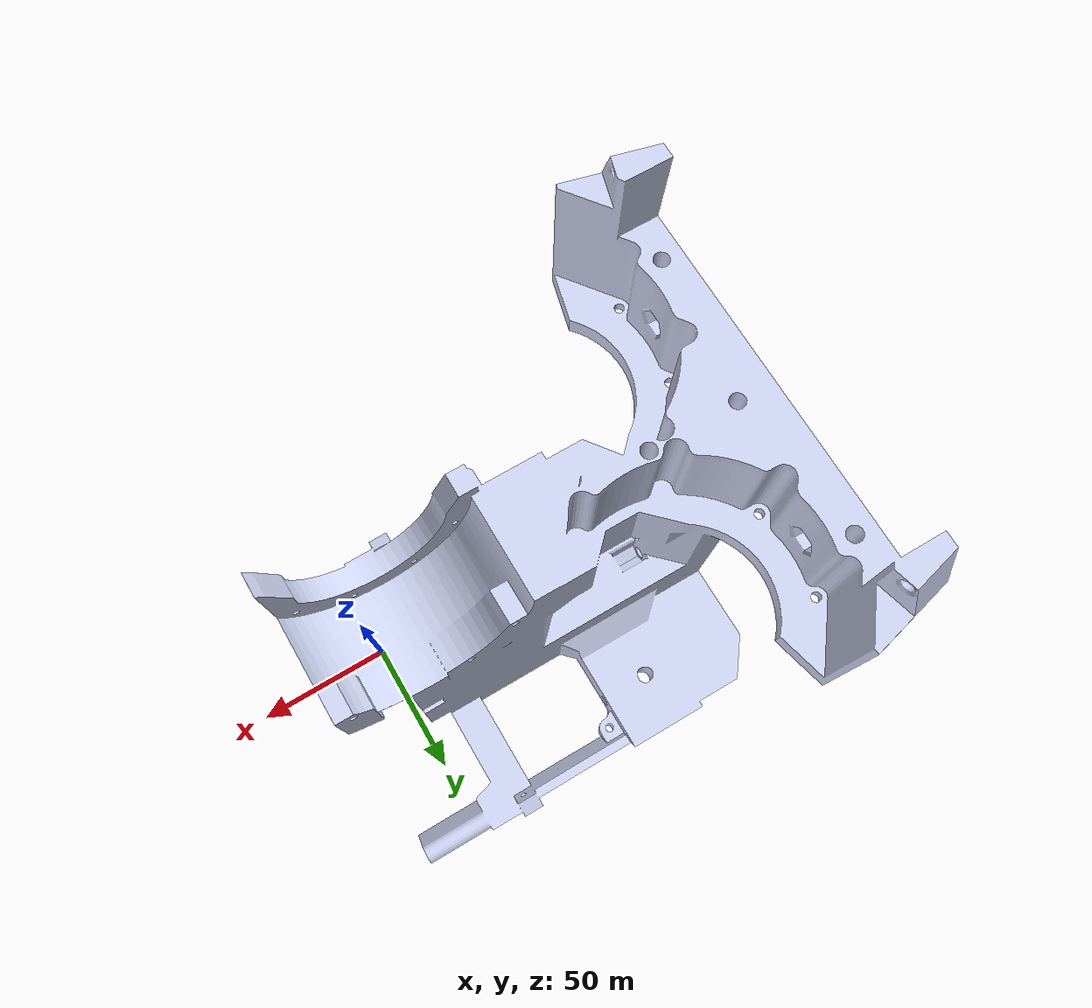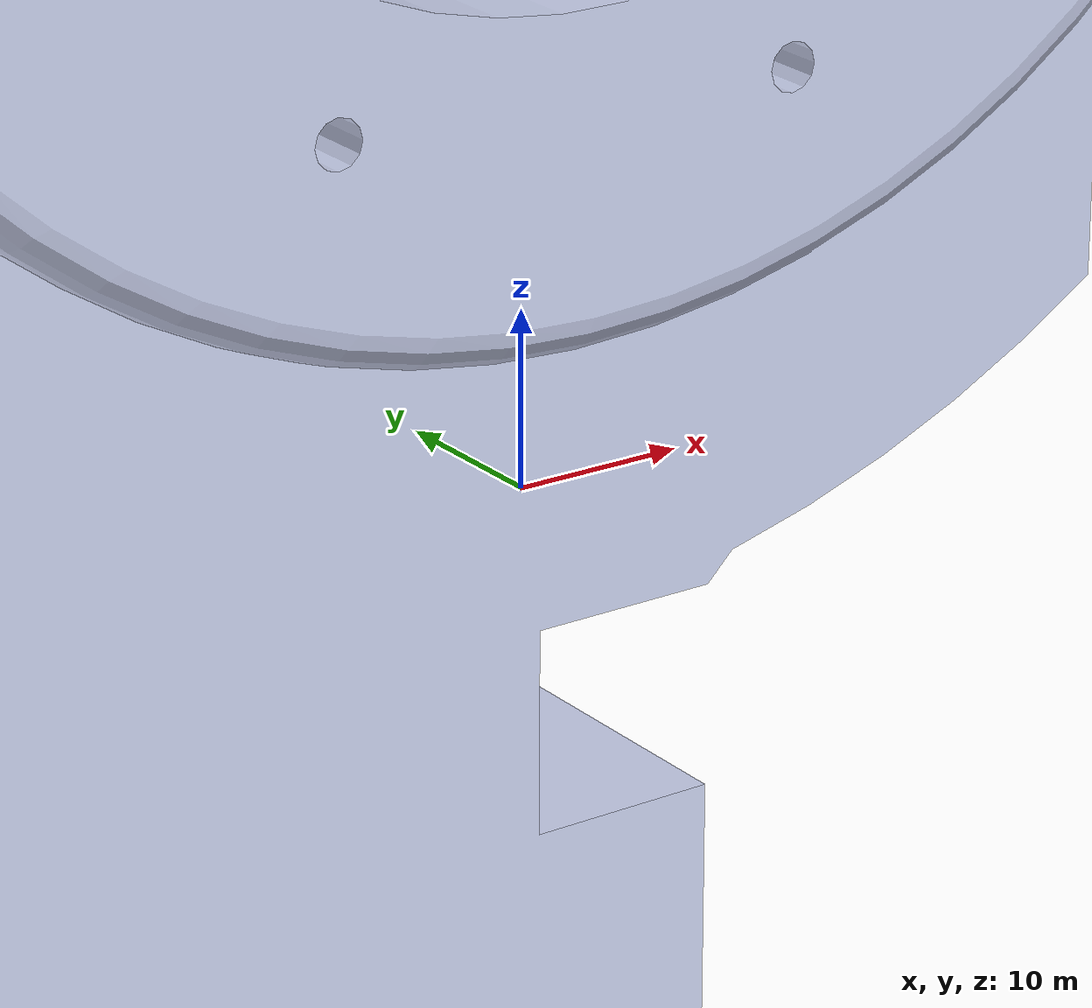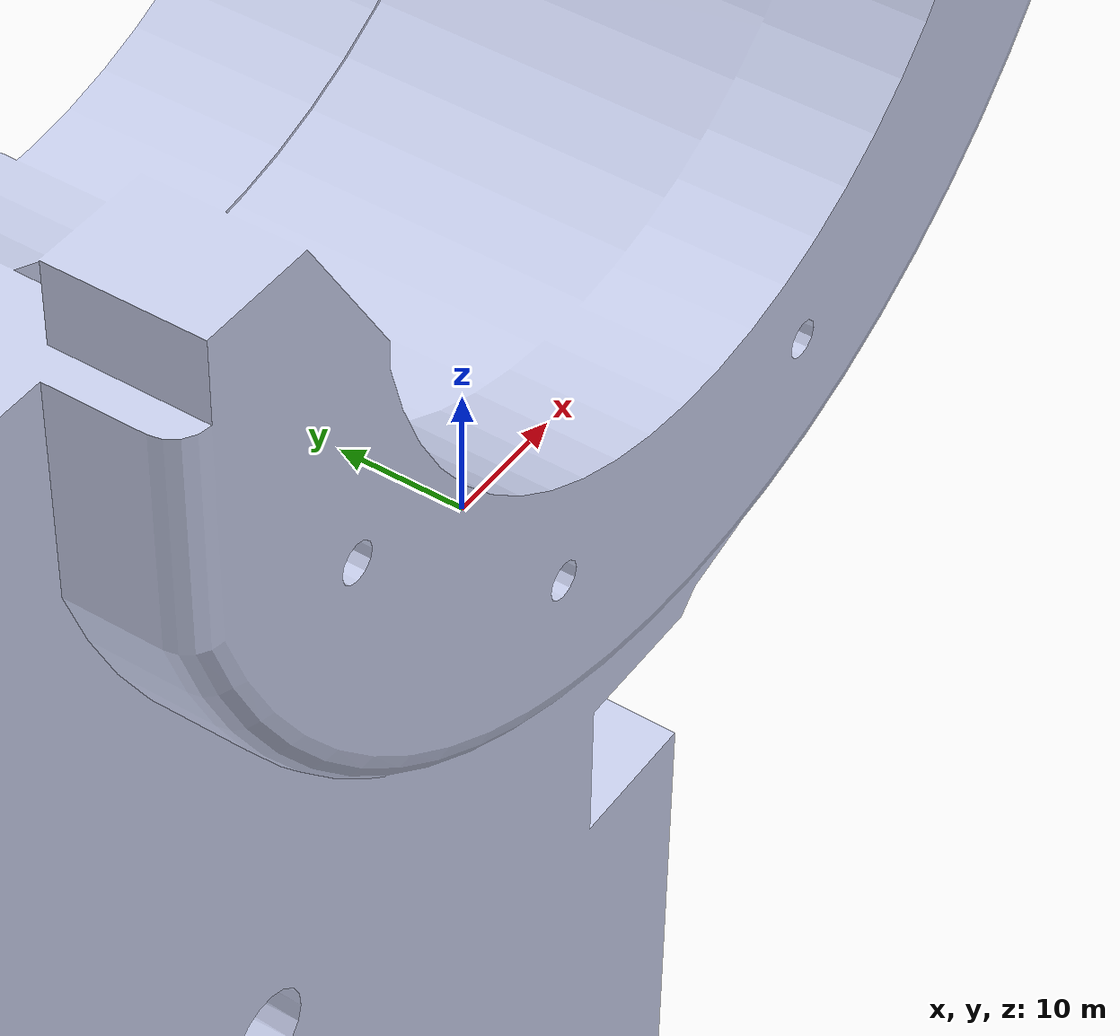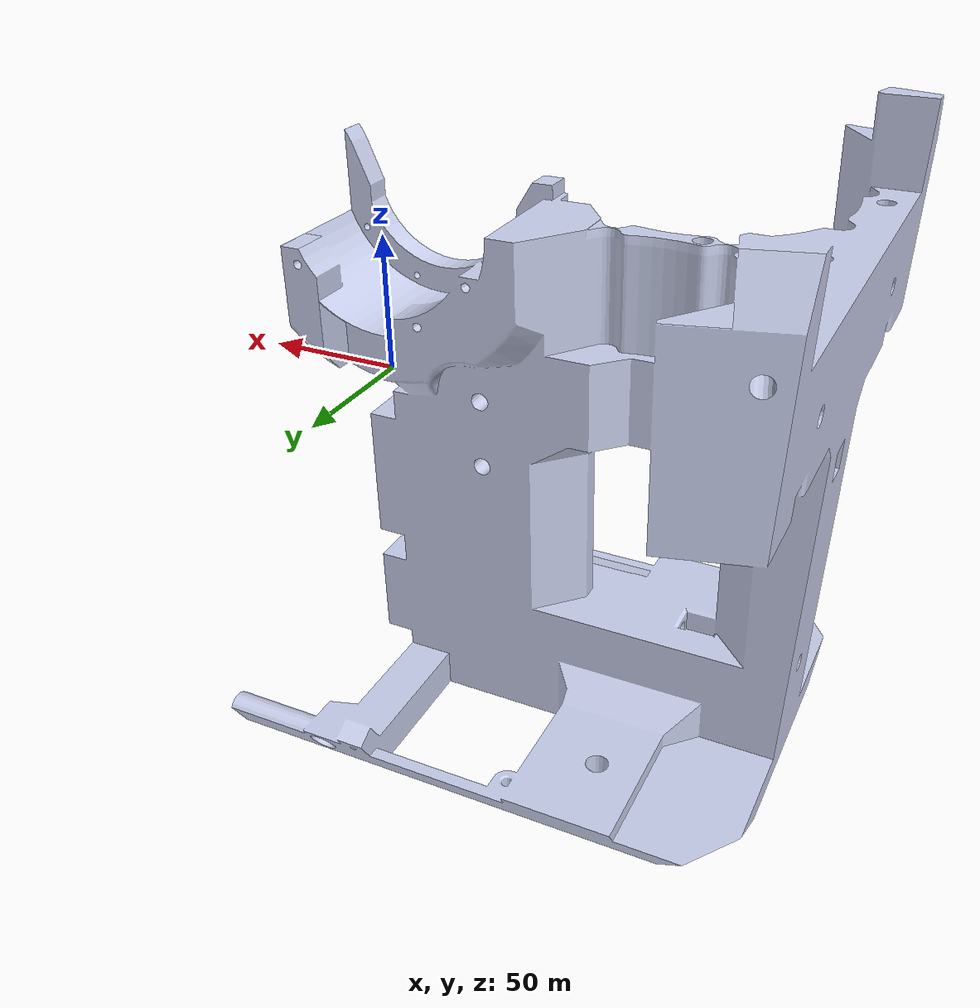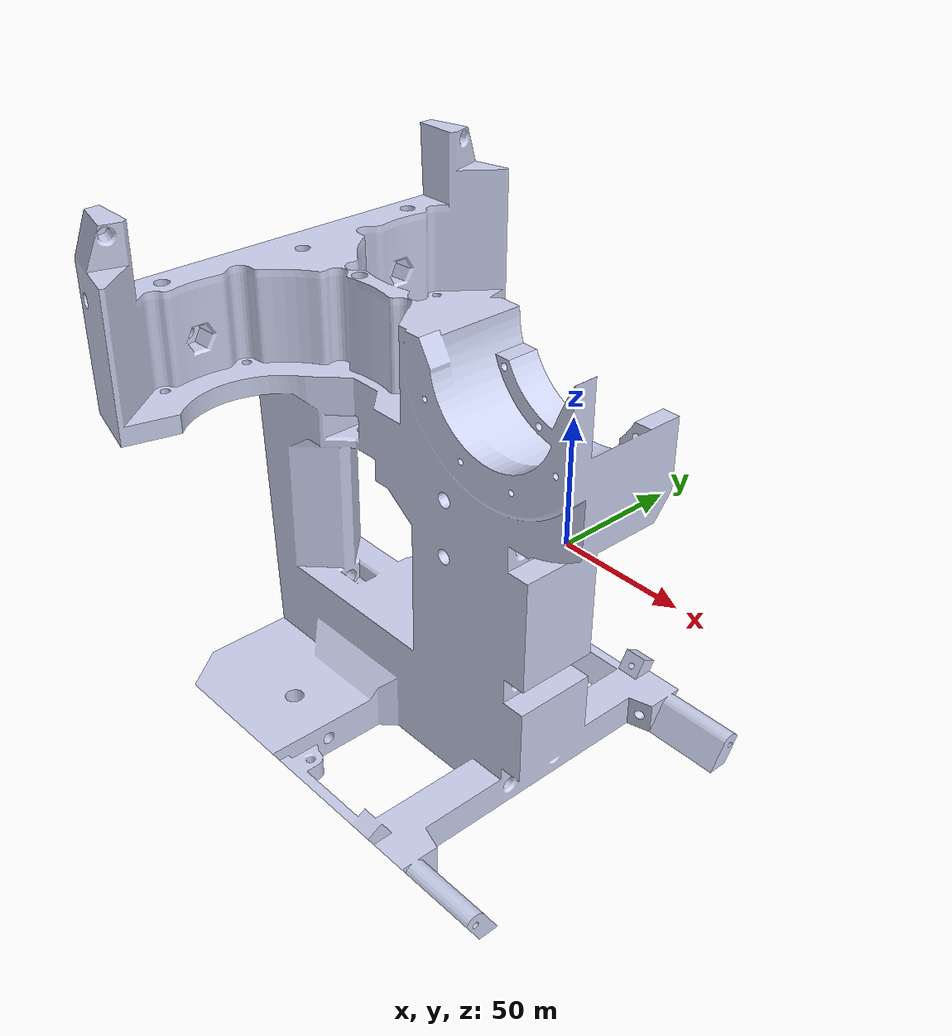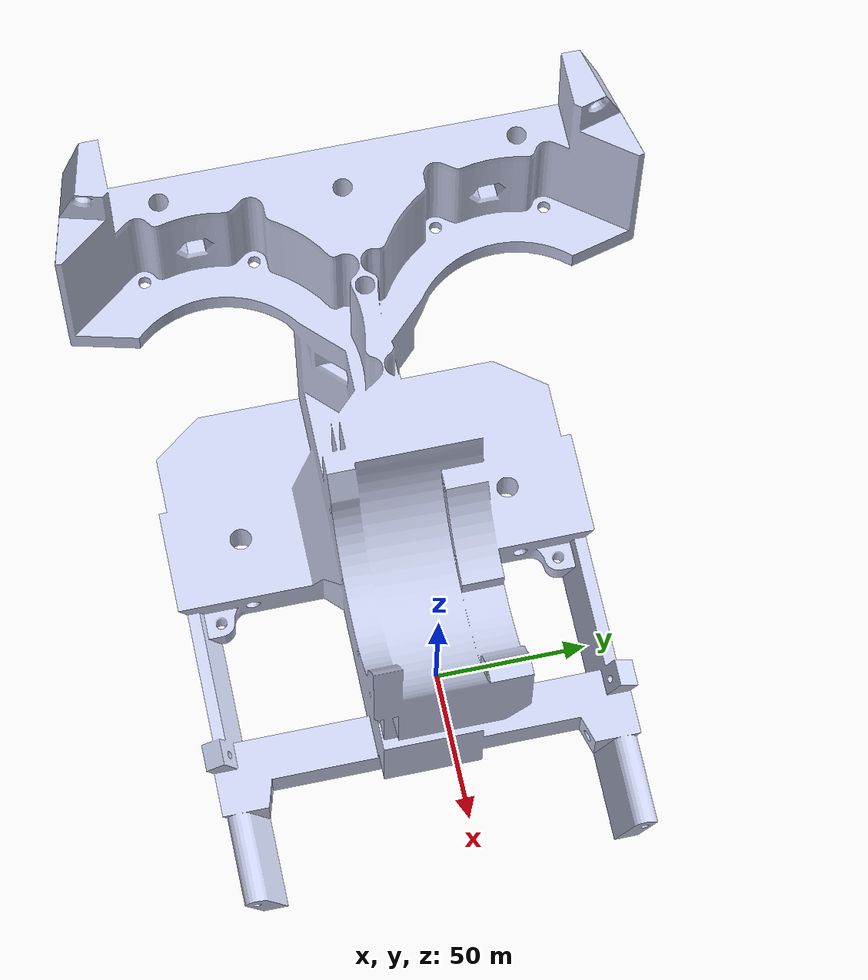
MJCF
<mujoco model="leg_wheel_infantry">
  <compiler angle="radian" />
  <option timestep="0.0002" integrator="RK4" solver="Newton" cone="elliptic" iterations="100" tolerance="1e-10" impratio="10" />

  <default>
    <default class="robot">
      <default class="motor">
        <joint />
        <motor />
      </default>
      <default class="visual">
        <geom material="visualgeom" contype="0" conaffinity="0" group="2" />
      </default>
      <default class="collision">
        <geom material="collision_material" condim="3" contype="0" conaffinity="1" priority="1" group="1" solref="0.005 1" solimp="0.99 0.999 1e-2" friction="1 0.01 0.01" />
      </default>
    </default>
  </default>

  <asset>
    <material name="visualgeom" rgba="0.792156862745098 0.819607843137255 0.933333333333333 1" />
    <material name="default_material" rgba="0.7 0.7 0.7 1" />
    <material name="collision_material" rgba="1.0 0.28 0.1 0.9" />
    <material name="collision_base_material" rgba="1.0 0.28 0.1 0.1" />
    <material name="collision_green_material" rgba="0 0.7 0 1" />
    <material name="collision_darkred_material" rgba="0.5 0 0 1" />
    <material name="coll_front_guidewheel_l"  rgba="0.0  0.8  0.8  1" />
    <material name="coll_behind_guidewheel_l" rgba="1.0  0.4  0.8  1" />
    <texture name="grid" type="2d" builtin="checker" width="512" height="512" rgb1=".1 .2 .3" rgb2=".2 .3 .4" />
    <material name="grid" texture="grid" texrepeat="1 1" texuniform="true" reflectance=".2" />

    <mesh name="base_link.STL" file="assets/base_link.STL" />
    <mesh name="base_link_part[0]" file="assets/collision/base_linkpart_0.obj"/>
    <mesh name="base_link_part[1]" file="assets/collision/base_linkpart_1.obj"/>
    <mesh name="base_link_part[2]" file="assets/collision/base_linkpart_2.obj"/>
    <mesh name="base_link_part[3]" file="assets/collision/base_linkpart_3.obj"/>
    <mesh name="base_link_part[4]" file="assets/collision/base_linkpart_4.obj"/>
    <mesh name="base_link_part[5]" file="assets/collision/base_linkpart_5.obj"/>
    <mesh name="base_link_part[6]" file="assets/collision/base_linkpart_6.obj"/>
    <mesh name="base_link_part[7]" file="assets/collision/base_linkpart_7.obj"/>
    <mesh name="base_link_part[8]" file="assets/collision/base_linkpart_8.obj"/>
    <mesh name="base_link_part[9]" file="assets/collision/base_linkpart_9.obj"/>
    <mesh name="base_link_part[10]" file="assets/collision/base_linkpart_10.obj"/>
    <mesh name="base_link_part[11]" file="assets/collision/base_linkpart_11.obj"/>
    <mesh name="base_link_part[12]" file="assets/collision/base_linkpart_12.obj"/>
    <mesh name="base_link_part[13]" file="assets/collision/base_linkpart_13.obj"/>
    <mesh name="base_link_part[14]" file="assets/collision/base_linkpart_14.obj"/>
    <mesh name="base_link_part[15]" file="assets/collision/base_linkpart_15.obj"/>
    <mesh name="base_link_part[16]" file="assets/collision/base_linkpart_16.obj"/>
    <mesh name="base_link_part[17]" file="assets/collision/base_linkpart_17.obj"/>
    <mesh name="base_link_part[18]" file="assets/collision/base_linkpart_18.obj"/>
    <mesh name="base_link_part[19]" file="assets/collision/base_linkpart_19.obj"/>
    <mesh name="base_link_part[20]" file="assets/collision/base_linkpart_20.obj"/>
    <mesh name="base_link_part[21]" file="assets/collision/base_linkpart_21.obj"/>
    <mesh name="base_link_part[22]" file="assets/collision/base_linkpart_22.obj"/>
    <mesh name="base_link_part[23]" file="assets/collision/base_linkpart_23.obj"/>
    <mesh name="base_link_part[24]" file="assets/collision/base_linkpart_24.obj"/>
    <mesh name="base_link_part[25]" file="assets/collision/base_linkpart_25.obj"/>
    <mesh name="base_link_part[26]" file="assets/collision/base_linkpart_26.obj"/>
    <mesh name="base_link_part[27]" file="assets/collision/base_linkpart_27.obj"/>
    <mesh name="base_link_part[28]" file="assets/collision/base_linkpart_28.obj"/>
    <mesh name="base_link_part[29]" file="assets/collision/base_linkpart_29.obj"/>
    <mesh name="base_link_part[30]" file="assets/collision/base_linkpart_30.obj"/>
    <mesh name="base_link_part[31]" file="assets/collision/base_linkpart_31.obj"/>
    <mesh name="base_link_part[32]" file="assets/collision/base_linkpart_32.obj"/>
    <mesh name="base_link_part[33]" file="assets/collision/base_linkpart_33.obj"/>
    <mesh name="base_link_part[34]" file="assets/collision/base_linkpart_34.obj"/>
    <mesh name="base_link_part[35]" file="assets/collision/base_linkpart_35.obj"/>
    <mesh name="base_link_part[36]" file="assets/collision/base_linkpart_36.obj"/>
    <mesh name="base_link_part[37]" file="assets/collision/base_linkpart_37.obj"/>
    <mesh name="base_link_part[38]" file="assets/collision/base_linkpart_38.obj"/>
    <mesh name="base_link_part[39]" file="assets/collision/base_linkpart_39.obj"/>
    <mesh name="base_link_part[40]" file="assets/collision/base_linkpart_40.obj"/>
    <mesh name="base_link_part[41]" file="assets/collision/base_linkpart_41.obj"/>
    <mesh name="base_link_part[42]" file="assets/collision/base_linkpart_42.obj"/>
    <mesh name="base_link_part[43]" file="assets/collision/base_linkpart_43.obj"/>
    <mesh name="base_link_part[44]" file="assets/collision/base_linkpart_44.obj"/>
    <mesh name="base_link_part[45]" file="assets/collision/base_linkpart_45.obj"/>
    <mesh name="base_link_part[46]" file="assets/collision/base_linkpart_46.obj"/>
    <mesh name="base_link_part[47]" file="assets/collision/base_linkpart_47.obj"/>
    <mesh name="gimbal_yaw_l.STL" file="assets/gimbal_yaw_l.STL" />
    <mesh name="gimbal_yaw_l_part[0]" file="assets/collision/gimbal_yaw_lpart_0.obj"/>
    <mesh name="gimbal_yaw_l_part[1]" file="assets/collision/gimbal_yaw_lpart_1.obj"/>
    <mesh name="gimbal_yaw_l_part[2]" file="assets/collision/gimbal_yaw_lpart_2.obj"/>
    <mesh name="gimbal_yaw_l_part[3]" file="assets/collision/gimbal_yaw_lpart_3.obj"/>
    <mesh name="gimbal_yaw_l_part[4]" file="assets/collision/gimbal_yaw_lpart_4.obj"/>
    <mesh name="gimbal_yaw_l_part[5]" file="assets/collision/gimbal_yaw_lpart_5.obj"/>
    <mesh name="gimbal_yaw_l_part[6]" file="assets/collision/gimbal_yaw_lpart_6.obj"/>
    <mesh name="gimbal_yaw_l_part[7]" file="assets/collision/gimbal_yaw_lpart_7.obj"/>

    <mesh name="gimbal_pitch_l.STL" file="assets/gimbal_pitch_l.STL" />
    <mesh name="gimbal_pitch_1_l.STL" file="assets/gimbal_pitch_1_l.STL" />
    <mesh name="pitch_l.STL" file="assets/pitch_l.STL" />
    <mesh name="pitch_l_part[0]" file="assets/collision/pitch_lpart_0.obj"/>
    <mesh name="pitch_l_part[1]" file="assets/collision/pitch_lpart_1.obj"/>
    <mesh name="pitch_l_part[2]" file="assets/collision/pitch_lpart_2.obj"/>
    <mesh name="pitch_l_part[3]" file="assets/collision/pitch_lpart_3.obj"/>
    <mesh name="pitch_l_part[4]" file="assets/collision/pitch_lpart_4.obj"/>
    <mesh name="pitch_l_part[5]" file="assets/collision/pitch_lpart_5.obj"/>
    <mesh name="pitch_l_part[6]" file="assets/collision/pitch_lpart_6.obj"/>
    <mesh name="pitch_l_part[7]" file="assets/collision/pitch_lpart_7.obj"/>
    <mesh name="pitch_l_part[8]" file="assets/collision/pitch_lpart_8.obj"/>
    <mesh name="pitch_l_part[9]" file="assets/collision/pitch_lpart_9.obj"/>

    <mesh name="right_behind_l.STL" file="assets/right_behind_l.STL" />
    <mesh name="right_behind_l_part[0]" file="assets/collision/right_behind_lpart_0.obj" />
    <mesh name="right_behind_l_part[1]" file="assets/collision/right_behind_lpart_1.obj" />
    <mesh name="right_behind_l_part[2]" file="assets/collision/right_behind_lpart_2.obj" />
    <mesh name="right_behind_l_part[3]" file="assets/collision/right_behind_lpart_3.obj" />
    <mesh name="right_behind_l_part[4]" file="assets/collision/right_behind_lpart_4.obj" />
    <mesh name="right_behind_l_part[5]" file="assets/collision/right_behind_lpart_5.obj" />
    <mesh name="right_behind_l_part[6]" file="assets/collision/right_behind_lpart_6.obj" />
    <mesh name="right_behind_l_part[7]" file="assets/collision/right_behind_lpart_7.obj" />
    <mesh name="right_behind_l_part[8]" file="assets/collision/right_behind_lpart_8.obj" />
    <mesh name="right_behind_l_part[9]" file="assets/collision/right_behind_lpart_9.obj" />
    <mesh name="right_behind_l_part[10]" file="assets/collision/right_behind_lpart_10.obj" />
    <mesh name="right_behind_l_part[11]" file="assets/collision/right_behind_lpart_11.obj" />
    <mesh name="right_behind_l_part[12]" file="assets/collision/right_behind_lpart_12.obj" />
    <mesh name="right_behind_l_part[13]" file="assets/collision/right_behind_lpart_13.obj" />
    <mesh name="right_behind_l_part[14]" file="assets/collision/right_behind_lpart_14.obj" />
    <mesh name="right_behind_l_part[15]" file="assets/collision/right_behind_lpart_15.obj" />
    <mesh name="right_behind_l_part[16]" file="assets/collision/right_behind_lpart_16.obj" />
    <mesh name="right_behind_l_part[17]" file="assets/collision/right_behind_lpart_17.obj" />
    <mesh name="right_behind_l_part[18]" file="assets/collision/right_behind_lpart_18.obj" />
    <mesh name="right_behind_l_part[19]" file="assets/collision/right_behind_lpart_19.obj" />
    <mesh name="right_behind_l_part[20]" file="assets/collision/right_behind_lpart_20.obj" />
    <mesh name="right_behind_l_part[21]" file="assets/collision/right_behind_lpart_21.obj" />
    <mesh name="right_behind_l_part[22]" file="assets/collision/right_behind_lpart_22.obj" />
    <mesh name="right_behind_l_part[23]" file="assets/collision/right_behind_lpart_23.obj" />
    <mesh name="right_behind_l_part[24]" file="assets/collision/right_behind_lpart_24.obj" />
    <mesh name="right_behind_l_part[25]" file="assets/collision/right_behind_lpart_25.obj" />
    <mesh name="right_behind_l_part[26]" file="assets/collision/right_behind_lpart_26.obj" />
    <mesh name="right_behind_l_part[27]" file="assets/collision/right_behind_lpart_27.obj" />
    <mesh name="right_behind_withwheel_l.STL" file="assets/right_behind_withwheel_l.STL" />
    <mesh name="right_behind_withwheel_l_part[0]" file="assets/collision/right_behind_withwheel_lpart_0.obj"/>
    <mesh name="right_behind_withwheel_l_part[1]" file="assets/collision/right_behind_withwheel_lpart_1.obj"/>
    <mesh name="right_behind_withwheel_l_part[2]" file="assets/collision/right_behind_withwheel_lpart_2.obj"/>
    <mesh name="right_behind_withwheel_l_part[3]" file="assets/collision/right_behind_withwheel_lpart_3.obj"/>
    <mesh name="right_behind_withwheel_l_part[4]" file="assets/collision/right_behind_withwheel_lpart_4.obj"/>
    <mesh name="right_behind_withwheel_l_part[5]" file="assets/collision/right_behind_withwheel_lpart_5.obj"/>
    <mesh name="right_behind_withwheel_l_part[6]" file="assets/collision/right_behind_withwheel_lpart_6.obj"/>
    <mesh name="right_behind_withwheel_l_part[7]" file="assets/collision/right_behind_withwheel_lpart_7.obj"/>
    <mesh name="right_behind_withwheel_l_part[8]" file="assets/collision/right_behind_withwheel_lpart_8.obj"/>
    <mesh name="right_behind_withwheel_l_part[9]" file="assets/collision/right_behind_withwheel_lpart_9.obj"/>
    <mesh name="right_behind_withwheel_l_part[10]" file="assets/collision/right_behind_withwheel_lpart_10.obj"/>
    <mesh name="right_behind_withwheel_l_part[11]" file="assets/collision/right_behind_withwheel_lpart_11.obj"/>
    <mesh name="right_behind_withwheel_l_part[12]" file="assets/collision/right_behind_withwheel_lpart_12.obj"/>
    <mesh name="right_behind_withwheel_l_part[13]" file="assets/collision/right_behind_withwheel_lpart_13.obj"/>
    <mesh name="right_wheel_l.STL" file="assets/right_wheel_l.STL" />
    <mesh name="right_wheel_l_part[0]" file="assets/collision/right_wheel_lpart_0.obj" />
    <mesh name="right_wheel_l_part[1]" file="assets/collision/right_wheel_lpart_0.obj" />
    <mesh name="right_wheel_l_part[2]" file="assets/collision/right_wheel_lpart_0.obj" />
    <mesh name="right_wheel_l_part[3]" file="assets/collision/right_wheel_lpart_0.obj" />
    <mesh name="right_wheel_l_part[4]" file="assets/collision/right_wheel_lpart_0.obj" />
    <mesh name="left_behind_l.STL" file="assets/left_behind_l.STL" />
    <mesh name="left_behind_l_part[0]" file="assets/collision/left_behind_lpart_0.obj" />
    <mesh name="left_behind_l_part[1]" file="assets/collision/left_behind_lpart_1.obj" />
    <mesh name="left_behind_l_part[2]" file="assets/collision/left_behind_lpart_2.obj" />
    <mesh name="left_behind_l_part[3]" file="assets/collision/left_behind_lpart_3.obj" />
    <mesh name="left_behind_l_part[4]" file="assets/collision/left_behind_lpart_4.obj" />
    <mesh name="left_behind_l_part[5]" file="assets/collision/left_behind_lpart_5.obj" />
    <mesh name="left_behind_l_part[6]" file="assets/collision/left_behind_lpart_6.obj" />
    <mesh name="left_behind_l_part[7]" file="assets/collision/left_behind_lpart_7.obj" />
    <mesh name="left_behind_l_part[8]" file="assets/collision/left_behind_lpart_8.obj" />
    <mesh name="left_behind_l_part[9]" file="assets/collision/left_behind_lpart_9.obj" />
    <mesh name="left_behind_l_part[10]" file="assets/collision/left_behind_lpart_10.obj" />
    <mesh name="left_behind_l_part[11]" file="assets/collision/left_behind_lpart_11.obj" />
    <mesh name="left_behind_l_part[12]" file="assets/collision/left_behind_lpart_12.obj" />
    <mesh name="left_behind_l_part[13]" file="assets/collision/left_behind_lpart_13.obj" />
    <mesh name="left_behind_l_part[14]" file="assets/collision/left_behind_lpart_14.obj" />
    <mesh name="left_behind_l_part[15]" file="assets/collision/left_behind_lpart_15.obj" />
    <mesh name="left_behind_l_part[16]" file="assets/collision/left_behind_lpart_16.obj" />
    <mesh name="left_behind_l_part[17]" file="assets/collision/left_behind_lpart_17.obj" />
    <mesh name="left_behind_l_part[18]" file="assets/collision/left_behind_lpart_18.obj" />
    <mesh name="left_behind_l_part[19]" file="assets/collision/left_behind_lpart_19.obj" />
    <mesh name="left_behind_l_part[20]" file="assets/collision/left_behind_lpart_20.obj" />
    <mesh name="left_behind_l_part[21]" file="assets/collision/left_behind_lpart_21.obj" />
    <mesh name="left_behind_l_part[22]" file="assets/collision/left_behind_lpart_22.obj" />
    <mesh name="left_behind_l_part[23]" file="assets/collision/left_behind_lpart_23.obj" />
    <mesh name="left_behind_l_part[24]" file="assets/collision/left_behind_lpart_24.obj" />
    <mesh name="left_behind_l_part[25]" file="assets/collision/left_behind_lpart_25.obj" />
    <mesh name="left_behind_l_part[26]" file="assets/collision/left_behind_lpart_26.obj" />
    <mesh name="left_behind_l_part[27]" file="assets/collision/left_behind_lpart_27.obj" />
    <mesh name="left_behind_l_part[28]" file="assets/collision/left_behind_lpart_28.obj" />
    <mesh name="left_behind_l_part[29]" file="assets/collision/left_behind_lpart_29.obj" />
    <mesh name="left_behind_l_part[30]" file="assets/collision/left_behind_lpart_30.obj" />
    <mesh name="left_behind_l_part[31]" file="assets/collision/left_behind_lpart_31.obj" />
    <mesh name="left_behind_l_part[32]" file="assets/collision/left_behind_lpart_32.obj" />
    <mesh name="left_behind_l_part[33]" file="assets/collision/left_behind_lpart_33.obj" />
    <mesh name="left_behind_l_part[34]" file="assets/collision/left_behind_lpart_34.obj" />
    <mesh name="left_behind_l_part[35]" file="assets/collision/left_behind_lpart_35.obj" />
    <mesh name="left_behind_l_part[36]" file="assets/collision/left_behind_lpart_36.obj" />
    <mesh name="left_behind_l_part[37]" file="assets/collision/left_behind_lpart_37.obj" />
    <mesh name="left_behind_l_part[38]" file="assets/collision/left_behind_lpart_38.obj" />
    <mesh name="left_behind_l_part[39]" file="assets/collision/left_behind_lpart_39.obj" />
    <mesh name="left_behind_l_part[40]" file="assets/collision/left_behind_lpart_40.obj" />
    <mesh name="left_behind_l_part[41]" file="assets/collision/left_behind_lpart_41.obj" />
    <mesh name="left_behind_l_part[42]" file="assets/collision/left_behind_lpart_42.obj" />
    <mesh name="left_behind_l_part[43]" file="assets/collision/left_behind_lpart_43.obj" />
    <mesh name="left_behind_l_part[44]" file="assets/collision/left_behind_lpart_44.obj" />
    <mesh name="left_behind_l_part[45]" file="assets/collision/left_behind_lpart_45.obj" />
    <mesh name="left_behind_withwheel_l.STL" file="assets/left_behind_withwheel_l.STL" />
    <mesh name="left_behind_withwheel_l_part[0]" file="assets/collision/left_behind_withwheel_lpart_0.obj" />
    <mesh name="left_behind_withwheel_l_part[1]" file="assets/collision/left_behind_withwheel_lpart_1.obj" />
    <mesh name="left_behind_withwheel_l_part[2]" file="assets/collision/left_behind_withwheel_lpart_2.obj" />
    <mesh name="left_behind_withwheel_l_part[3]" file="assets/collision/left_behind_withwheel_lpart_3.obj" />
    <mesh name="left_behind_withwheel_l_part[4]" file="assets/collision/left_behind_withwheel_lpart_4.obj" />
    <mesh name="left_wheel_l.STL" file="assets/left_wheel_l.STL" />
    <mesh name="left_wheel_l_part[0]" file="assets/collision/left_wheel_lpart_0.obj" />
    <mesh name="left_wheel_l_part[1]" file="assets/collision/left_wheel_lpart_0.obj" />
    <mesh name="left_wheel_l_part[2]" file="assets/collision/left_wheel_lpart_0.obj" />
    <mesh name="left_wheel_l_part[3]" file="assets/collision/left_wheel_lpart_0.obj" />
    <mesh name="left_wheel_l_part[4]" file="assets/collision/left_wheel_lpart_0.obj" />
    <mesh name="right_front_guidewheel_l.STL" file="assets/right_front_guidewheel_l.STL" />
    <mesh name="left_front_guidewheel_l.STL" file="assets/left_front_guidewheel_l.STL" />
    <mesh name="right_behind_guidewheel_l.STL" file="assets/right_behind_guidewheel_l.STL" />
    <mesh name="left_behind_guidewheel_l.STL" file="assets/left_behind_guidewheel_l.STL" />
    <mesh name="guidewheel_part[0]" file="assets/collision/left_behind_guidewheel_lpart_0.obj" />
    <mesh name="guidewheel_part[1]" file="assets/collision/left_behind_guidewheel_lpart_1.obj" />
    <mesh name="guidewheel_part[2]" file="assets/collision/left_behind_guidewheel_lpart_2.obj" />
    <mesh name="guidewheel_part[3]" file="assets/collision/left_behind_guidewheel_lpart_3.obj" />
    <mesh name="guidewheel_part[4]" file="assets/collision/left_behind_guidewheel_lpart_4.obj" />
  </asset>

  <worldbody>
    <light diffuse="1.0 1.0 1.0" pos="0 0 20" dir="0 0 -1" />
    <!--geom type="plane" size="10 10 0.01" material="grid" /-->

    <body name="base_link" pos="0.0 0.0 1.0" euler="0 0 0" childclass="robot">
      <freejoint name="floating_base" />
      <inertial pos="0.05497 0 0.15493" fullinertia="0.21638190 0.23397975 0.37363187 -0.00088876 0.00682276 -0.00111569" mass="13.33819137" />
        <geom type="mesh" mesh="base_link.STL" class="visual" />
        <geom type="mesh" mesh="base_link_part[0]" class="collision" material="collision_base_material"/>
        <geom type="mesh" mesh="base_link_part[1]" class="collision" material="collision_base_material"/>
        <geom type="mesh" mesh="base_link_part[2]" class="collision" material="collision_base_material"/>
        <geom type="mesh" mesh="base_link_part[3]" class="collision" material="collision_base_material"/>
        <geom type="mesh" mesh="base_link_part[4]" class="collision" material="collision_base_material"/>
        <geom type="mesh" mesh="base_link_part[5]" class="collision" material="collision_base_material"/>
        <geom type="mesh" mesh="base_link_part[6]" class="collision" material="collision_base_material"/>
        <geom type="mesh" mesh="base_link_part[7]" class="collision" material="collision_base_material"/>
        <geom type="mesh" mesh="base_link_part[8]" class="collision" material="collision_base_material"/>
        <geom type="mesh" mesh="base_link_part[9]" class="collision" material="collision_base_material"/>
        <geom type="mesh" mesh="base_link_part[10]" class="collision" material="collision_base_material"/>
        <geom type="mesh" mesh="base_link_part[11]" class="collision" material="collision_base_material"/>
        <geom type="mesh" mesh="base_link_part[12]" class="collision" material="collision_base_material"/>
        <geom type="mesh" mesh="base_link_part[13]" class="collision" material="collision_base_material"/>
        <geom type="mesh" mesh="base_link_part[14]" class="collision" material="collision_base_material"/>
        <geom type="mesh" mesh="base_link_part[15]" class="collision" material="collision_base_material"/>
        <geom type="mesh" mesh="base_link_part[16]" class="collision" material="collision_base_material"/>
        <geom type="mesh" mesh="base_link_part[17]" class="collision" material="collision_base_material"/>
        <geom type="mesh" mesh="base_link_part[18]" class="collision" material="collision_base_material"/>
        <geom type="mesh" mesh="base_link_part[19]" class="collision" material="collision_base_material"/>
        <geom type="mesh" mesh="base_link_part[20]" class="collision" material="collision_base_material"/>
        <geom type="mesh" mesh="base_link_part[21]" class="collision" material="collision_base_material"/>
        <geom type="mesh" mesh="base_link_part[22]" class="collision" material="collision_base_material"/>
        <geom type="mesh" mesh="base_link_part[23]" class="collision" material="collision_base_material"/>
        <geom type="mesh" mesh="base_link_part[24]" class="collision" material="collision_base_material"/>
        <geom type="mesh" mesh="base_link_part[25]" class="collision" material="collision_base_material"/>
        <geom type="mesh" mesh="base_link_part[26]" class="collision" material="collision_base_material"/>
        <geom type="mesh" mesh="base_link_part[27]" class="collision" material="collision_base_material"/>
        <geom type="mesh" mesh="base_link_part[28]" class="collision" material="collision_base_material"/>
        <geom type="mesh" mesh="base_link_part[29]" class="collision" material="collision_base_material"/>
        <geom type="mesh" mesh="base_link_part[30]" class="collision" material="collision_base_material"/>
        <geom type="mesh" mesh="base_link_part[31]" class="collision" material="collision_base_material"/>
        <geom type="mesh" mesh="base_link_part[32]" class="collision" material="collision_base_material"/>
        <geom type="mesh" mesh="base_link_part[33]" class="collision" material="collision_base_material"/>
        <geom type="mesh" mesh="base_link_part[34]" class="collision" material="collision_base_material"/>
        <geom type="mesh" mesh="base_link_part[35]" class="collision" material="collision_base_material"/>
        <geom type="mesh" mesh="base_link_part[36]" class="collision" material="collision_base_material"/>
        <geom type="mesh" mesh="base_link_part[37]" class="collision" material="collision_base_material"/>
        <geom type="mesh" mesh="base_link_part[38]" class="collision" material="collision_base_material"/>
        <geom type="mesh" mesh="base_link_part[39]" class="collision" material="collision_base_material"/>
        <geom type="mesh" mesh="base_link_part[40]" class="collision" material="collision_base_material"/>
        <geom type="mesh" mesh="base_link_part[41]" class="collision" material="collision_base_material"/>
        <geom type="mesh" mesh="base_link_part[42]" class="collision" material="collision_base_material"/>
        <geom type="mesh" mesh="base_link_part[43]" class="collision" material="collision_base_material"/>
        <geom type="mesh" mesh="base_link_part[44]" class="collision" material="collision_base_material"/>
        <geom type="mesh" mesh="base_link_part[45]" class="collision" material="collision_base_material"/>
        <geom type="mesh" mesh="base_link_part[46]" class="collision" material="collision_base_material"/>
        <geom type="mesh" mesh="base_link_part[47]" class="collision" material="collision_base_material"/>
      <site name="base_link_site" pos="0 0 0" quat="1 0 0 0" />

      <!-- gimbal_yaw_joint: base_link -> gimbal_yaw_link -->
      <body name="gimbal_yaw_link" pos="0.05497 -6.2876E-05 0.216">
        <inertial pos="-0.06478623 -0.01299334 0.05380955" fullinertia="0.00212711 0.00402939 0.00284049 -0.00018732 0.00117713 0.00032730" mass="3.96430692" />
        <geom type="mesh" mesh="gimbal_yaw_l.STL" class="visual" />
        <geom type="mesh" mesh="gimbal_yaw_l_part[0]" class="collision"/>
        <geom type="mesh" mesh="gimbal_yaw_l_part[1]" class="collision"/>
        <geom type="mesh" mesh="gimbal_yaw_l_part[2]" class="collision"/>
        <geom type="mesh" mesh="gimbal_yaw_l_part[3]" class="collision"/>
        <geom type="mesh" mesh="gimbal_yaw_l_part[4]" class="collision"/>
        <geom type="mesh" mesh="gimbal_yaw_l_part[5]" class="collision"/>
        <geom type="mesh" mesh="gimbal_yaw_l_part[6]" class="collision"/>
        <geom type="mesh" mesh="gimbal_yaw_l_part[7]" class="collision"/>

        <!-- gimbal_pitch_joint: gimbal_yaw_link -> gimbal_pitch_link -->
        <body name="gimbal_pitch_link" pos="0.00164847562787268 -0.0239433190703443 0.0923938769133979">
          <inertial pos="0.02900220 0.04086318 0.03608392" fullinertia="0.00574223 0.01373438 0.01369197 0.00300376 0.00085875 -0.00031819" mass="2.19647344" />
              <geom type="mesh" mesh="pitch_l.STL" class="visual" />
              <geom type="mesh" mesh="pitch_l_part[0]" class="collision"/>
              <geom type="mesh" mesh="pitch_l_part[1]" class="collision"/>
              <geom type="mesh" mesh="pitch_l_part[2]" class="collision"/>
              <geom type="mesh" mesh="pitch_l_part[3]" class="collision"/>
              <geom type="mesh" mesh="pitch_l_part[4]" class="collision"/>
              <geom type="mesh" mesh="pitch_l_part[5]" class="collision"/>
              <geom type="mesh" mesh="pitch_l_part[6]" class="collision"/>
              <geom type="mesh" mesh="pitch_l_part[7]" class="collision"/>
              <geom type="mesh" mesh="pitch_l_part[8]" class="collision"/>
              <geom type="mesh" mesh="pitch_l_part[9]" class="collision"/>

          <site name="gimbal_pitch_site" pos="-0.02973509 -0.01404838 0.02294308" size="0.01" rgba="1 0 0 1"/>
        </body>

        <!-- gimbal_pitch_1_joint: gimbal_yaw_link -> gimbal_pitch_1_link -->
        <body name="gimbal_pitch_1_link" pos="-0.071916354841862 -0.04304133253934 0.0370000000000083">
          <inertial pos="-0.01222167560 0.00283476388 0.01006058598" fullinertia="5.51902537e-07 1.28987251e-06 7.60085228e-07 1.78861901e-08 5.13868989e-07 -1.17210680e-08" mass="0.00521498001" />
          <geom type="mesh" mesh="gimbal_pitch_l.STL" class="visual" />
          <geom type="mesh" mesh="gimbal_pitch_l.STL" class="collision" />

          <!-- gimbal_pitch_2_joint: gimbal_pitch_1_link -> gimbal_pitch_2_link -->
          <body name="gimbal_pitch_2_link" pos="-0.030621046620462 -0.00611770024963629 0.0253165014866359">
            <inertial pos="0.03803767191 -0.00573095649 0.02651022258" fullinertia="2.81421637e-06 8.41856260e-06 5.64743521e-06 1.81208407e-07 -3.79799528e-06 1.22674551e-07" mass="0.00831196240" />
            <geom type="mesh" mesh="gimbal_pitch_1_l.STL" class="visual" />
            <geom type="mesh" mesh="gimbal_pitch_1_l.STL" class="collision" />
            <site name="gimbal_pitch_2_site" pos="0.0763659 0.007 0.05302044" size="0.01" rgba="1 0 0 1"/>
          </body>
        </body>
      </body>

      <!-- right_front_joint: base_link -> right_front_link (REMOVED) -->

      <!-- right_behind_joint: base_link -> right_behind_link -->
      <body name="right_hip_link" pos="0.05497 -0.15431 0.15493">
        <joint name="right_hip_joint" type="hinge" axis="0 -1 0" />
        <inertial pos="-0.08270080 -0.00914114 0.00524848" fullinertia="1.3084E-04 1.2920E-03 1.1695E-03 -3.90E-06 9.293E-05 -4.8E-07" mass="0.57138070" />
        <geom type="mesh" mesh="right_behind_l.STL" class="visual" />
        <geom type="mesh" mesh="right_behind_l_part[0]" class="collision" material="collision_green_material"/>
        <geom type="mesh" mesh="right_behind_l_part[1]" class="collision" material="collision_green_material"/>
        <geom type="mesh" mesh="right_behind_l_part[2]" class="collision" material="collision_green_material"/>
        <geom type="mesh" mesh="right_behind_l_part[3]" class="collision" material="collision_green_material"/>
        <geom type="mesh" mesh="right_behind_l_part[4]" class="collision" material="collision_green_material"/>
        <geom type="mesh" mesh="right_behind_l_part[5]" class="collision" material="collision_green_material"/>
        <geom type="mesh" mesh="right_behind_l_part[6]" class="collision" material="collision_green_material"/>
        <geom type="mesh" mesh="right_behind_l_part[7]" class="collision" material="collision_green_material"/>
        <geom type="mesh" mesh="right_behind_l_part[8]" class="collision" material="collision_green_material"/>
        <geom type="mesh" mesh="right_behind_l_part[9]" class="collision" material="collision_green_material"/>
        <geom type="mesh" mesh="right_behind_l_part[10]" class="collision" material="collision_green_material"/>
        <geom type="mesh" mesh="right_behind_l_part[11]" class="collision" material="collision_green_material"/>
        <geom type="mesh" mesh="right_behind_l_part[12]" class="collision" material="collision_green_material"/>
        <geom type="mesh" mesh="right_behind_l_part[13]" class="collision" material="collision_green_material"/>
        <geom type="mesh" mesh="right_behind_l_part[14]" class="collision" material="collision_green_material"/>
        <geom type="mesh" mesh="right_behind_l_part[15]" class="collision" material="collision_green_material"/>
        <geom type="mesh" mesh="right_behind_l_part[16]" class="collision" material="collision_green_material"/>
        <geom type="mesh" mesh="right_behind_l_part[17]" class="collision" material="collision_green_material"/>
        <geom type="mesh" mesh="right_behind_l_part[18]" class="collision" material="collision_green_material"/>
        <geom type="mesh" mesh="right_behind_l_part[19]" class="collision" material="collision_green_material"/>
        <geom type="mesh" mesh="right_behind_l_part[20]" class="collision" material="collision_green_material"/>
        <geom type="mesh" mesh="right_behind_l_part[21]" class="collision" material="collision_green_material"/>
        <geom type="mesh" mesh="right_behind_l_part[22]" class="collision" material="collision_green_material"/>
        <geom type="mesh" mesh="right_behind_l_part[23]" class="collision" material="collision_green_material"/>
        <geom type="mesh" mesh="right_behind_l_part[24]" class="collision" material="collision_green_material"/>
        <geom type="mesh" mesh="right_behind_l_part[25]" class="collision" material="collision_green_material"/>
        <geom type="mesh" mesh="right_behind_l_part[26]" class="collision" material="collision_green_material"/>
        <geom type="mesh" mesh="right_behind_l_part[27]" class="collision" material="collision_green_material"/>
        <site name="right_behind_site" pos="-0.0978657 -0.01824996 0.00512892" size="0.01" rgba="1 0 0 1"/>

        <!-- right_behind_withwheel_joint: right_behind_link -> right_behind_withwheel_link -->
        <body name="right_knee_link" pos="-0.190983049444668 -0.00874999999999929 -0.00299502072861904">
          <joint name="right_knee_joint" type="hinge" axis="0 -1 0" ref="0" limited="true" range="-1.2 0.18"/>
          <inertial pos="0.07826782 -0.01380965 -0.07255711" fullinertia="1.9384E-03 4.0685E-03 2.1455E-03 9.22E-06 1.9208E-03 -8.33E-06" mass="0.40470233" />
          <geom type="mesh" mesh="right_behind_withwheel_l.STL" class="visual" />
          <geom type="mesh" mesh="right_behind_withwheel_l_part[0]" class="collision" material="collision_darkred_material"/>
          <geom type="mesh" mesh="right_behind_withwheel_l_part[1]" class="collision" material="collision_darkred_material"/>
          <geom type="mesh" mesh="right_behind_withwheel_l_part[2]" class="collision" material="collision_darkred_material"/>
          <geom type="mesh" mesh="right_behind_withwheel_l_part[3]" class="collision" material="collision_darkred_material"/>
          <geom type="mesh" mesh="right_behind_withwheel_l_part[4]" class="collision" material="collision_darkred_material"/>
          <geom type="mesh" mesh="right_behind_withwheel_l_part[5]" class="collision" material="collision_darkred_material"/>
          <geom type="mesh" mesh="right_behind_withwheel_l_part[6]" class="collision" material="collision_darkred_material"/>
          <geom type="mesh" mesh="right_behind_withwheel_l_part[7]" class="collision" material="collision_darkred_material"/>
          <geom type="mesh" mesh="right_behind_withwheel_l_part[8]" class="collision" material="collision_darkred_material"/>
          <geom type="mesh" mesh="right_behind_withwheel_l_part[9]" class="collision" material="collision_darkred_material"/>
          <geom type="mesh" mesh="right_behind_withwheel_l_part[10]" class="collision" material="collision_darkred_material"/>
          <geom type="mesh" mesh="right_behind_withwheel_l_part[11]" class="collision" material="collision_darkred_material"/>
          <geom type="mesh" mesh="right_behind_withwheel_l_part[12]" class="collision" material="collision_darkred_material"/>
          <geom type="mesh" mesh="right_behind_withwheel_l_part[13]" class="collision" material="collision_darkred_material"/>
          <site name="right_behind_withwheel_site" pos="-0.026 -0.013 0.04914912" size="0.01" rgba="1 0 0 1"/>
          <!-- right_wheel_joint: right_behind_withwheel_link -> right_wheel_link -->
          <body name="right_wheel_link" pos="0.20632438244001 -0.0410000000000011 -0.160915819741446">
            <joint name="right_wheel_joint" type="hinge" axis="0 1 0"  />
            <inertial pos="0.00039564 0.00052065 -0.00036894" fullinertia="3.1455E-04 5.9455E-04 3.1430E-04 -1.79E-06 -1.76E-06 1.67E-06" mass="0.58907313" />
            <geom type="mesh" mesh="right_wheel_l.STL" class="visual" />
            <geom name="right_wheel_l_collision" pos="0 0 0" quat="0.7071 0.7071 0.0 0.0" type="cylinder" size="0.06 0.02" class="collision" rgba="0 0 1 0.5"/>
          </body>
        </body>
      </body>

      <!-- left_front_joint: base_link -> left_front_link (REMOVED) -->

      <!-- left_behind_joint: base_link -> left_behind_link -->
      <body name="left_hip_link" pos="0.05497 0.15419 0.15493">
        <joint name="left_hip_joint" type="hinge" axis="0 -1 0"  />
        <inertial pos="-0.08136239 0.00879557 0.00515035" fullinertia="1.2904e-04 1.2759e-03 1.1531e-03 5.12e-08 9.147e-05 7.63e-07" mass="0.56281933" />

        <geom type="mesh" mesh="left_behind_l_part[0]" class="collision" material="collision_green_material"/>
        <geom type="mesh" mesh="left_behind_l_part[1]" class="collision" material="collision_green_material"/>
        <geom type="mesh" mesh="left_behind_l_part[2]" class="collision" material="collision_green_material"/>
        <geom type="mesh" mesh="left_behind_l_part[3]" class="collision" material="collision_green_material"/>
        <geom type="mesh" mesh="left_behind_l_part[4]" class="collision" material="collision_green_material"/>
        <geom type="mesh" mesh="left_behind_l_part[5]" class="collision" material="collision_green_material"/>
        <geom type="mesh" mesh="left_behind_l_part[6]" class="collision" material="collision_green_material"/>
        <geom type="mesh" mesh="left_behind_l_part[7]" class="collision" material="collision_green_material"/>
        <geom type="mesh" mesh="left_behind_l_part[8]" class="collision" material="collision_green_material"/>
        <geom type="mesh" mesh="left_behind_l_part[9]" class="collision" material="collision_green_material"/>
        <geom type="mesh" mesh="left_behind_l_part[10]" class="collision" material="collision_green_material"/>
        <geom type="mesh" mesh="left_behind_l_part[11]" class="collision" material="collision_green_material"/>
        <geom type="mesh" mesh="left_behind_l_part[12]" class="collision" material="collision_green_material"/>
        <geom type="mesh" mesh="left_behind_l_part[13]" class="collision" material="collision_green_material"/>
        <geom type="mesh" mesh="left_behind_l_part[14]" class="collision" material="collision_green_material"/>
        <geom type="mesh" mesh="left_behind_l_part[15]" class="collision" material="collision_green_material"/>
        <geom type="mesh" mesh="left_behind_l_part[16]" class="collision" material="collision_green_material"/>
        <geom type="mesh" mesh="left_behind_l_part[17]" class="collision" material="collision_green_material"/>
        <geom type="mesh" mesh="left_behind_l_part[18]" class="collision" material="collision_green_material"/>
        <geom type="mesh" mesh="left_behind_l_part[19]" class="collision" material="collision_green_material"/>
        <geom type="mesh" mesh="left_behind_l_part[20]" class="collision" material="collision_green_material"/>
        <geom type="mesh" mesh="left_behind_l_part[21]" class="collision" material="collision_green_material"/>
        <geom type="mesh" mesh="left_behind_l_part[22]" class="collision" material="collision_green_material"/>
        <geom type="mesh" mesh="left_behind_l_part[23]" class="collision" material="collision_green_material"/>
        <geom type="mesh" mesh="left_behind_l_part[24]" class="collision" material="collision_green_material"/>
        <geom type="mesh" mesh="left_behind_l_part[25]" class="collision" material="collision_green_material"/>
        <geom type="mesh" mesh="left_behind_l_part[26]" class="collision" material="collision_green_material"/>
        <geom type="mesh" mesh="left_behind_l_part[27]" class="collision" material="collision_green_material"/>
        <geom type="mesh" mesh="left_behind_l_part[28]" class="collision" material="collision_green_material"/>
        <geom type="mesh" mesh="left_behind_l_part[29]" class="collision" material="collision_green_material"/>
        <geom type="mesh" mesh="left_behind_l_part[30]" class="collision" material="collision_green_material"/>
        <geom type="mesh" mesh="left_behind_l_part[31]" class="collision" material="collision_green_material"/>
        <geom type="mesh" mesh="left_behind_l_part[32]" class="collision" material="collision_green_material"/>
        <geom type="mesh" mesh="left_behind_l_part[33]" class="collision" material="collision_green_material"/>
        <geom type="mesh" mesh="left_behind_l_part[34]" class="collision" material="collision_green_material"/>
        <geom type="mesh" mesh="left_behind_l_part[35]" class="collision" material="collision_green_material"/>
        <geom type="mesh" mesh="left_behind_l_part[36]" class="collision" material="collision_green_material"/>
        <geom type="mesh" mesh="left_behind_l_part[37]" class="collision" material="collision_green_material"/>
        <geom type="mesh" mesh="left_behind_l_part[38]" class="collision" material="collision_green_material"/>
        <geom type="mesh" mesh="left_behind_l_part[39]" class="collision" material="collision_green_material"/>
        <geom type="mesh" mesh="left_behind_l_part[40]" class="collision" material="collision_green_material"/>
        <geom type="mesh" mesh="left_behind_l_part[41]" class="collision" material="collision_green_material"/>
        <geom type="mesh" mesh="left_behind_l_part[42]" class="collision" material="collision_green_material"/>
        <geom type="mesh" mesh="left_behind_l_part[43]" class="collision" material="collision_green_material"/>
        <geom type="mesh" mesh="left_behind_l_part[44]" class="collision" material="collision_green_material"/>
        <geom type="mesh" mesh="left_behind_l_part[45]" class="collision" material="collision_green_material"/>
        <site name="left_behind_site" pos="-0.09786571 0.01825 0.00512892" size="0.01" rgba="1 0 0 1"/>

        <!-- left_behind_withwheel_joint: left_behind_link -> left_behind_withwheel_link -->
        <body name="left_knee_link" pos="-0.18 0.0147499999999983 0">
          <joint name="left_knee_joint" type="hinge" axis="0 -1 0" ref="0" limited="true" range="-1.2  0.18"/>
          <inertial pos="0.07826780 0.01380964 -0.07255711" fullinertia="1.9384E-03 4.0685E-03 2.1455E-03 -9.22E-06 1.9208E-03 8.33E-06" mass="0.40470233" />
          <geom type="mesh" mesh="left_behind_withwheel_l.STL" class="visual" />
          <geom type="mesh" mesh="left_behind_withwheel_l_part[0]" class="collision" />
          <geom type="mesh" mesh="left_behind_withwheel_l_part[1]" class="collision" />
          <geom type="mesh" mesh="left_behind_withwheel_l_part[2]" class="collision" />
          <geom type="mesh" mesh="left_behind_withwheel_l_part[3]" class="collision" />
          <geom type="mesh" mesh="left_behind_withwheel_l_part[4]" class="collision" />
          <site name="left_behind_withwheel_site" pos="-0.036 0.007 0.04914912" size="0.01" rgba="1 0 0 1"/>

          <!-- left_wheel_joint: left_behind_withwheel_link -> left_wheel_link -->
          <body name="left_wheel_link" pos="0.195341332995339 0.0349999999999993 -0.163910840470068">
            <joint name="left_wheel_joint" type="hinge" axis="0 -1 0"  />
            <inertial pos="0.00054063 -0.00052065 0.00001888" fullinertia="3.1618e-04 5.9455e-04 3.1267e-04 2.4425e-06 1.2282e-07 8.5295e-08" mass="0.58907313" />
            <geom type="mesh" mesh="left_wheel_l.STL" class="visual" />
            <geom name="left_wheel_l_collision" pos="0 0 0" quat="0.7071 0.7071 0.0 0.0" type="cylinder" size="0.06 0.02" class="collision" rgba="0 0 1 0.5"/>
          </body>
        </body>
      </body>

      <!-- right_front_guidewheel_joint: base_link -> right_front_guidewheel_link -->
      <body name="right_front_guidewheel_link" pos="0.31497 -0.11876 0.0054993">
        <joint name="right_front_guidewheel_joint" type="hinge" axis="0 -1 0"  />
        <inertial pos="0 0 0" fullinertia="3.12120485E-07 5.93790191E-07 3.12120485E-07 0 0 0" mass="0.00507512983" />
        <geom type="mesh" mesh="right_front_guidewheel_l.STL" class="visual" />
        <geom type="mesh" mesh="guidewheel_part[0]" class="collision" material="coll_front_guidewheel_l"/>
        <geom type="mesh" mesh="guidewheel_part[1]" class="collision" material="coll_front_guidewheel_l"/>
        <geom type="mesh" mesh="guidewheel_part[2]" class="collision" material="coll_front_guidewheel_l"/>
        <geom type="mesh" mesh="guidewheel_part[3]" class="collision" material="coll_front_guidewheel_l"/>
        <geom type="mesh" mesh="guidewheel_part[4]" class="collision" material="coll_front_guidewheel_l"/>
      </body>

      <!-- left_front_guidewheel_joint: base_link -> left_front_guidewheel_link -->
      <body name="left_front_guidewheel_link" pos="0.31497 0.11864 0.0054993">
        <joint name="left_front_guidewheel_joint" type="hinge" axis="0 -1 0"  />
        <inertial pos="0 0 0" fullinertia="3.12120485E-07 5.93790191E-07 3.12120485E-07 0 0 0" mass="0.00507512983" />
        <geom type="mesh" mesh="left_front_guidewheel_l.STL" class="visual" />
        <geom type="mesh" mesh="guidewheel_part[0]" class="collision" material="coll_front_guidewheel_l"/>
        <geom type="mesh" mesh="guidewheel_part[1]" class="collision" material="coll_front_guidewheel_l"/>
        <geom type="mesh" mesh="guidewheel_part[2]" class="collision" material="coll_front_guidewheel_l"/>
        <geom type="mesh" mesh="guidewheel_part[3]" class="collision" material="coll_front_guidewheel_l"/>
        <geom type="mesh" mesh="guidewheel_part[4]" class="collision" material="coll_front_guidewheel_l"/>
      </body>

      <!-- right_behind_guidewheel_joint: base_link -> right_behind_guidewheel_link -->
      <body name="right_behind_guidewheel_link" pos="-0.20503 -0.11876 0.0054993">
        <joint name="right_behind_guidewheel_joint" type="hinge" axis="0 -1 0"  />
        <inertial pos="0 0 0" fullinertia="3.12120485E-07 5.93790191E-07 3.12120485E-07 0 0 0" mass="0.00507512983" />
        <geom type="mesh" mesh="right_behind_guidewheel_l.STL" class="visual" />
        <geom type="mesh" mesh="guidewheel_part[0]" class="collision" material="coll_behind_guidewheel_l"/>
        <geom type="mesh" mesh="guidewheel_part[1]" class="collision" material="coll_behind_guidewheel_l"/>
        <geom type="mesh" mesh="guidewheel_part[2]" class="collision" material="coll_behind_guidewheel_l"/>
        <geom type="mesh" mesh="guidewheel_part[3]" class="collision" material="coll_behind_guidewheel_l"/>
        <geom type="mesh" mesh="guidewheel_part[4]" class="collision" material="coll_behind_guidewheel_l"/>
      </body>

      <!-- left_behind_guidewheel_joint: base_link -> left_behind_guidewheel_link -->
      <body name="left_behind_guidewheel_link" pos="-0.20503 0.118637123732007 0.00549925237528687">
        <joint name="left_behind_guidewheel_joint" type="hinge" axis="0 -1 0"  />
        <inertial pos="0 0 0" fullinertia="3.12120485E-07 5.93790191E-07 3.12120485E-07 0 0 0" mass="0.00507512983" />
        <geom type="mesh" mesh="left_behind_guidewheel_l.STL" class="visual" />
        <geom type="mesh" mesh="guidewheel_part[0]" class="collision" material="coll_behind_guidewheel_l"/>
        <geom type="mesh" mesh="guidewheel_part[1]" class="collision" material="coll_behind_guidewheel_l"/>
        <geom type="mesh" mesh="guidewheel_part[2]" class="collision" material="coll_behind_guidewheel_l"/>
        <geom type="mesh" mesh="guidewheel_part[3]" class="collision" material="coll_behind_guidewheel_l"/>
        <geom type="mesh" mesh="guidewheel_part[4]" class="collision" material="coll_behind_guidewheel_l"/>
      </body>

    </body>

  </worldbody>

  <actuator>
    <motor name="left_hip" joint="left_hip_joint" class="motor" ctrllimited="true" ctrlrange="-50 50"/>
    <motor name="left_knee" joint="left_knee_joint" class="motor" ctrllimited="true" ctrlrange="-50 50"/>
    <motor name="left_wheel" joint="left_wheel_joint" class="motor"  ctrllimited="true" ctrlrange="-50 50"/>
    <motor name="right_hip" joint="right_hip_joint" class="motor" ctrllimited="true" ctrlrange="-50 50"/>
    <motor name="right_knee" joint="right_knee_joint" class="motor" ctrllimited="true" ctrlrange="-50 50"/>
    <motor name="right_wheel" joint="right_wheel_joint" class="motor" />
  </actuator>

  <contact>
    <exclude body1="base_link" body2="gimbal_yaw_link"/>
    <exclude body1="gimbal_yaw_link" body2="gimbal_pitch_link"/>
    <exclude body1="gimbal_yaw_link" body2="gimbal_pitch_1_link"/>
    <exclude body1="gimbal_yaw_link" body2="gimbal_pitch_2_link"/>
    <exclude body1="base_link" body2="right_hip_link"/>
    <exclude body1="right_knee_link" body2="right_wheel_link"/>
    <exclude body1="base_link" body2="left_hip_link"/>
    <exclude body1="left_knee_link" body2="left_wheel_link"/>
    <exclude body1="base_link" body2="right_wheel_link" />
    <exclude body1="base_link" body2="right_knee_link" />
    <exclude body1="base_link" body2="left_wheel_link" />
    <exclude body1="base_link" body2="left_knee_link" />
  </contact>

  <sensor>
    <framepos name="base_link_site_pos" objtype="site" objname="base_link_site" />
    <framequat name="base_link_site_quat" objtype="site" objname="base_link_site" />
    <framelinvel name="base_link_site_linvel" objtype="site" objname="base_link_site" />
    <frameangvel name="base_link_site_angvel" objtype="site" objname="base_link_site" />
    <velocimeter name="base_link_site_vel" site="base_link_site" />
    <accelerometer name="base_link_accel" site="base_link_site" />
    <gyro name="imu_gyro" site="base_link_site" />
  </sensor>

  <equality>
    <connect site1="gimbal_pitch_2_site" site2="gimbal_pitch_site" solref="0.001 1" solimp="0.99 0.99 0.01"/>
  </equality>

</mujoco>
